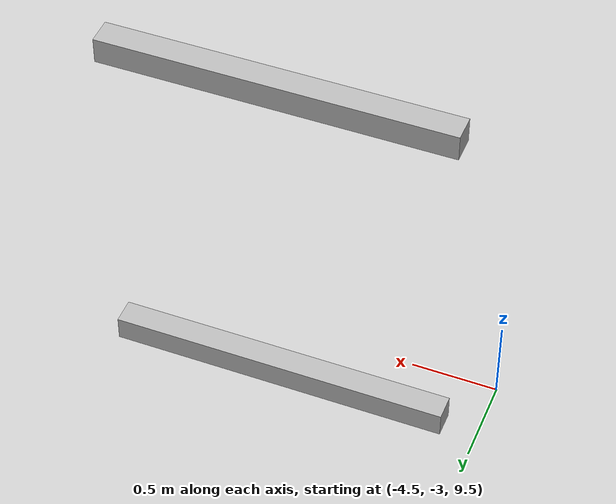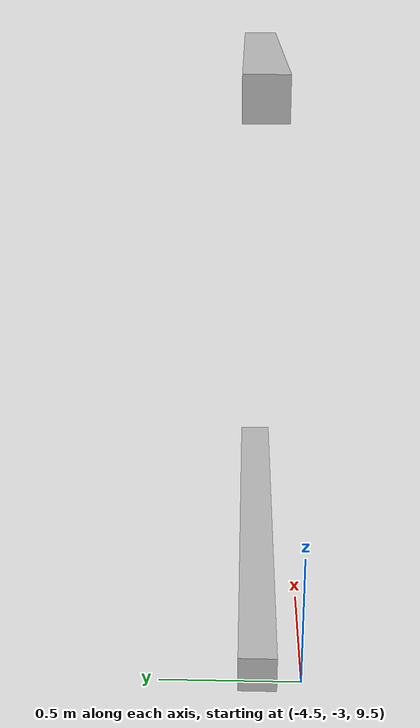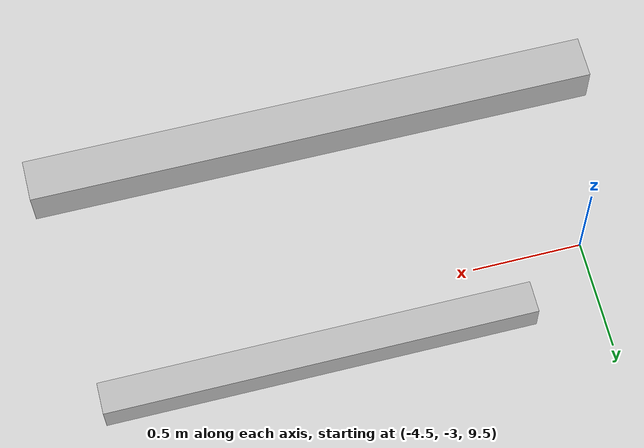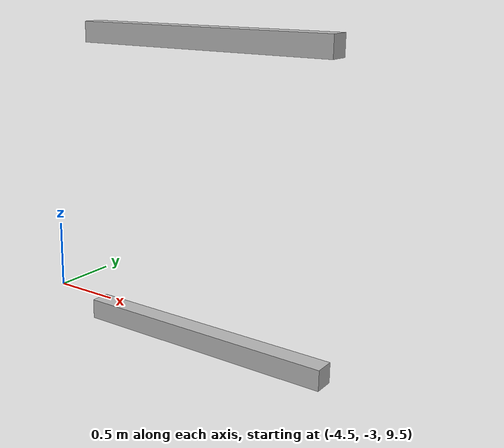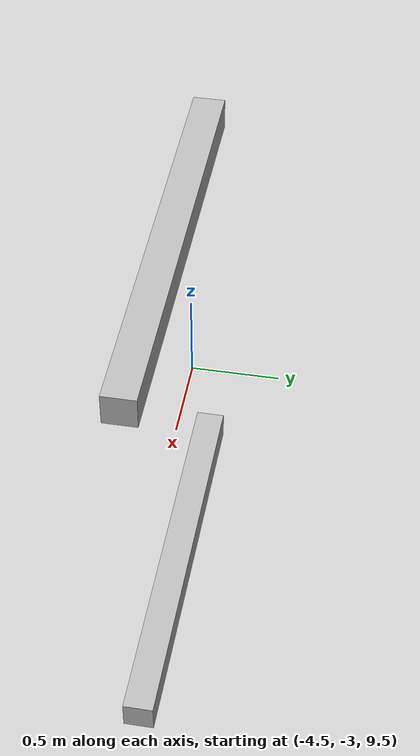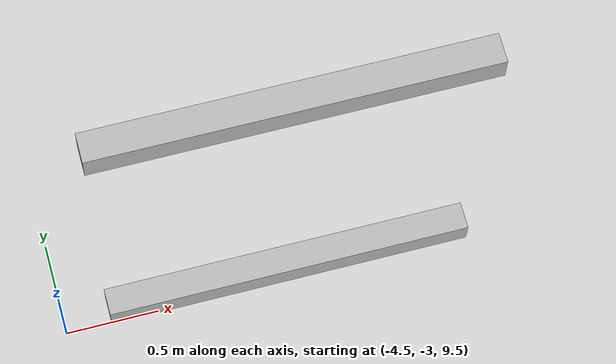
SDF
<sdf version="1.7">
 <world name="default">
  <model name="orthogonal_747_2.000.15_TS">
   <static>1</static>
   <link name="x_link_5_1_1">
    <inertial>
     <mass>1</mass>
     <inertia>
      <ixx>0.166667</ixx>
      <ixy>0</ixy>
      <ixz>0</ixz>
      <iyy>0.166667</iyy>
      <iyz>0</iyz>
      <izz>0.166667</izz>
     </inertia>
    </inertial>
    <pose>3.225 2.15 11.825 0 -0 0</pose>
    <visual name="visual_0">
     <laser_retro>4607</laser_retro>
     <geometry><box><size>2 1e-06 0.15</size></box></geometry>
     <material>
      <script><name>Gazebo/Grey</name><uri>file://media/materials/scripts/gazebo.material</uri></script>
      <shader type="pixel"><normal_map>__default__</normal_map></shader>
      <ambient>0.678 0.498 0.659 1</ambient>
      <diffuse>0.7 0.7 0.7 1</diffuse>
      <specular>0.01 0.01 0.01 1</specular>
      <emissive>0 0 0 1</emissive>
     </material>
     <pose>0 -0.075 0 0 -0 0</pose>
     <transparency>1</transparency>
    </visual>
    <visual name="visual_1">
     <laser_retro>4608</laser_retro>
     <geometry><box><size>2 1e-06 0.15</size></box></geometry>
     <material>
      <script><name>Gazebo/Grey</name><uri>file://media/materials/scripts/gazebo.material</uri></script>
      <shader type="pixel"><normal_map>__default__</normal_map></shader>
      <ambient>0.447 0.624 0.812 1</ambient>
      <diffuse>0.7 0.7 0.7 1</diffuse>
      <specular>0.01 0.01 0.01 1</specular>
      <emissive>0 0 0 1</emissive>
     </material>
     <pose>0 0.075 0 0 -0 0</pose>
     <transparency>1</transparency>
    </visual>
    <visual name="visual_2">
     <laser_retro>4609</laser_retro>
     <geometry><box><size>2 0.15 1e-06</size></box></geometry>
     <material>
      <script><name>Gazebo/Grey</name><uri>file://media/materials/scripts/gazebo.material</uri></script>
      <shader type="pixel"><normal_map>__default__</normal_map></shader>
      <ambient>0.988 0.686 0.243 1</ambient>
      <diffuse>0.7 0.7 0.7 1</diffuse>
      <specular>0.01 0.01 0.01 1</specular>
      <emissive>0 0 0 1</emissive>
     </material>
     <pose>0 0 -0.075 0 -0 0</pose>
     <transparency>1</transparency>
    </visual>
    <visual name="visual_3">
     <laser_retro>4610</laser_retro>
     <geometry><box><size>1e-06 0.15 0.15</size></box></geometry>
     <material>
      <script><name>Gazebo/Grey</name><uri>file://media/materials/scripts/gazebo.material</uri></script>
      <shader type="pixel"><normal_map>__default__</normal_map></shader>
      <ambient>0.988 0.914 0.31 1</ambient>
      <diffuse>0.7 0.7 0.7 1</diffuse>
      <specular>0.01 0.01 0.01 1</specular>
      <emissive>0 0 0 1</emissive>
     </material>
     <pose>1 0 0 0 -0 0</pose>
     <transparency>1</transparency>
    </visual>
    <visual name="visual_4">
     <laser_retro>4611</laser_retro>
     <geometry><box><size>2 0.15 1e-06</size></box></geometry>
     <material>
      <script><name>Gazebo/Grey</name><uri>file://media/materials/scripts/gazebo.material</uri></script>
      <shader type="pixel"><normal_map>__default__</normal_map></shader>
      <ambient>0.937 0.161 0.161 1</ambient>
      <diffuse>0.7 0.7 0.7 1</diffuse>
      <specular>0.01 0.01 0.01 1</specular>
      <emissive>0 0 0 1</emissive>
     </material>
     <pose>0 0 0.075 0 -0 0</pose>
     <transparency>1</transparency>
    </visual>
    <visual name="visual_5">
     <laser_retro>4612</laser_retro>
     <geometry><box><size>1e-06 0.15 0.15</size></box></geometry>
     <material>
      <script><name>Gazebo/Grey</name><uri>file://media/materials/scripts/gazebo.material</uri></script>
      <shader type="pixel"><normal_map>__default__</normal_map></shader>
      <ambient>0.541 0.886 0.204 1</ambient>
      <diffuse>0.7 0.7 0.7 1</diffuse>
      <specular>0.01 0.01 0.01 1</specular>
      <emissive>0 0 0 1</emissive>
     </material>
     <pose>-1 0 0 0 -0 0</pose>
     <transparency>1</transparency>
    </visual>
    <visual name="visual_texture">
     <geometry><box><size>1.9998 0.149985 0.149985</size></box></geometry>
     <material>
      <script>
       <uri>model://BASE_MODELS/simple_block_v2_textured/materials/scripts</uri>
       <uri>model://BASE_MODELS/simple_block_v2_textured/materials/textures</uri>
       <name>metal</name>
      </script>
     </material>
     <laser_retro>4613</laser_retro>
    </visual>
    <collision name="collision">
     <geometry><box><size>2 0.15 0.15</size></box></geometry>
     <surface>
      <friction>
       <ode><mu>1</mu><mu2>1</mu2><fdir1>0 0 0</fdir1><slip1>0</slip1><slip2>0</slip2></ode>
       <torsional>
        <coefficient>1</coefficient>
        <patch_radius>0</patch_radius>
        <surface_radius>0</surface_radius>
        <use_patch_radius>1</use_patch_radius>
        <ode><slip>0</slip></ode>
       </torsional>
      </friction>
      <bounce><restitution_coefficient>0</restitution_coefficient><threshold>1e+06</threshold></bounce>
      <contact>
       <collide_without_contact>0</collide_without_contact>
       <collide_without_contact_bitmask>1</collide_without_contact_bitmask>
       <collide_bitmask>1</collide_bitmask>
       <ode>
        <soft_cfm>0</soft_cfm>
        <soft_erp>0.2</soft_erp>
        <kp>1e+13</kp>
        <kd>1</kd>
        <max_vel>0.01</max_vel>
        <min_depth>0</min_depth>
       </ode>
       <bullet>
        <split_impulse>1</split_impulse>
        <split_impulse_penetration_threshold>-0.01</split_impulse_penetration_threshold>
        <soft_cfm>0</soft_cfm>
        <soft_erp>0.2</soft_erp>
        <kp>1e+13</kp>
        <kd>1</kd>
       </bullet>
      </contact>
     </surface>
    </collision>
   </link>
   <link name="x_link_6_1_1">
    <inertial>
     <mass>1</mass>
     <inertia>
      <ixx>0.166667</ixx>
      <ixy>0</ixy>
      <ixz>0</ixz>
      <iyy>0.166667</iyy>
      <iyz>0</iyz>
      <izz>0.166667</izz>
     </inertia>
    </inertial>
    <pose>3.225 2.15 13.975 0 -0 0</pose>
    <visual name="visual_0">
     <laser_retro>5510</laser_retro>
     <geometry><box><size>2 1e-06 0.15</size></box></geometry>
     <material>
      <script><name>Gazebo/Grey</name><uri>file://media/materials/scripts/gazebo.material</uri></script>
      <shader type="pixel"><normal_map>__default__</normal_map></shader>
      <ambient>0.678 0.498 0.659 1</ambient>
      <diffuse>0.7 0.7 0.7 1</diffuse>
      <specular>0.01 0.01 0.01 1</specular>
      <emissive>0 0 0 1</emissive>
     </material>
     <pose>0 -0.075 0 0 -0 0</pose>
     <transparency>1</transparency>
    </visual>
    <visual name="visual_1">
     <laser_retro>5511</laser_retro>
     <geometry><box><size>2 1e-06 0.15</size></box></geometry>
     <material>
      <script><name>Gazebo/Grey</name><uri>file://media/materials/scripts/gazebo.material</uri></script>
      <shader type="pixel"><normal_map>__default__</normal_map></shader>
      <ambient>0.447 0.624 0.812 1</ambient>
      <diffuse>0.7 0.7 0.7 1</diffuse>
      <specular>0.01 0.01 0.01 1</specular>
      <emissive>0 0 0 1</emissive>
     </material>
     <pose>0 0.075 0 0 -0 0</pose>
     <transparency>1</transparency>
    </visual>
    <visual name="visual_2">
     <laser_retro>5512</laser_retro>
     <geometry><box><size>2 0.15 1e-06</size></box></geometry>
     <material>
      <script><name>Gazebo/Grey</name><uri>file://media/materials/scripts/gazebo.material</uri></script>
      <shader type="pixel"><normal_map>__default__</normal_map></shader>
      <ambient>0.988 0.686 0.243 1</ambient>
      <diffuse>0.7 0.7 0.7 1</diffuse>
      <specular>0.01 0.01 0.01 1</specular>
      <emissive>0 0 0 1</emissive>
     </material>
     <pose>0 0 -0.075 0 -0 0</pose>
     <transparency>1</transparency>
    </visual>
    <visual name="visual_3">
     <laser_retro>5513</laser_retro>
     <geometry><box><size>1e-06 0.15 0.15</size></box></geometry>
     <material>
      <script><name>Gazebo/Grey</name><uri>file://media/materials/scripts/gazebo.material</uri></script>
      <shader type="pixel"><normal_map>__default__</normal_map></shader>
      <ambient>0.988 0.914 0.31 1</ambient>
      <diffuse>0.7 0.7 0.7 1</diffuse>
      <specular>0.01 0.01 0.01 1</specular>
      <emissive>0 0 0 1</emissive>
     </material>
     <pose>1 0 0 0 -0 0</pose>
     <transparency>1</transparency>
    </visual>
    <visual name="visual_4">
     <laser_retro>5514</laser_retro>
     <geometry><box><size>2 0.15 1e-06</size></box></geometry>
     <material>
      <script><name>Gazebo/Grey</name><uri>file://media/materials/scripts/gazebo.material</uri></script>
      <shader type="pixel"><normal_map>__default__</normal_map></shader>
      <ambient>0.937 0.161 0.161 1</ambient>
      <diffuse>0.7 0.7 0.7 1</diffuse>
      <specular>0.01 0.01 0.01 1</specular>
      <emissive>0 0 0 1</emissive>
     </material>
     <pose>0 0 0.075 0 -0 0</pose>
     <transparency>1</transparency>
    </visual>
    <visual name="visual_5">
     <laser_retro>5515</laser_retro>
     <geometry><box><size>1e-06 0.15 0.15</size></box></geometry>
     <material>
      <script><name>Gazebo/Grey</name><uri>file://media/materials/scripts/gazebo.material</uri></script>
      <shader type="pixel"><normal_map>__default__</normal_map></shader>
      <ambient>0.541 0.886 0.204 1</ambient>
      <diffuse>0.7 0.7 0.7 1</diffuse>
      <specular>0.01 0.01 0.01 1</specular>
      <emissive>0 0 0 1</emissive>
     </material>
     <pose>-1 0 0 0 -0 0</pose>
     <transparency>1</transparency>
    </visual>
    <visual name="visual_texture">
     <geometry><box><size>1.9998 0.149985 0.149985</size></box></geometry>
     <material>
      <script>
       <uri>model://BASE_MODELS/simple_block_v2_textured/materials/scripts</uri>
       <uri>model://BASE_MODELS/simple_block_v2_textured/materials/textures</uri>
       <name>metal</name>
      </script>
     </material>
     <laser_retro>5516</laser_retro>
    </visual>
    <collision name="collision">
     <geometry><box><size>2 0.15 0.15</size></box></geometry>
     <surface>
      <friction>
       <ode><mu>1</mu><mu2>1</mu2><fdir1>0 0 0</fdir1><slip1>0</slip1><slip2>0</slip2></ode>
       <torsional>
        <coefficient>1</coefficient>
        <patch_radius>0</patch_radius>
        <surface_radius>0</surface_radius>
        <use_patch_radius>1</use_patch_radius>
        <ode><slip>0</slip></ode>
       </torsional>
      </friction>
      <bounce><restitution_coefficient>0</restitution_coefficient><threshold>1e+06</threshold></bounce>
      <contact>
       <collide_without_contact>0</collide_without_contact>
       <collide_without_contact_bitmask>1</collide_without_contact_bitmask>
       <collide_bitmask>1</collide_bitmask>
       <ode>
        <soft_cfm>0</soft_cfm>
        <soft_erp>0.2</soft_erp>
        <kp>1e+13</kp>
        <kd>1</kd>
        <max_vel>0.01</max_vel>
        <min_depth>0</min_depth>
       </ode>
       <bullet>
        <split_impulse>1</split_impulse>
        <split_impulse_penetration_threshold>-0.01</split_impulse_penetration_threshold>
        <soft_cfm>0</soft_cfm>
        <soft_erp>0.2</soft_erp>
        <kp>1e+13</kp>
        <kd>1</kd>
       </bullet>
      </contact>
     </surface>
    </collision>
   </link>
   <pose>-6.47624 -5 -2.5 0 -0 0</pose>
  </model>
 </world>
</sdf>
